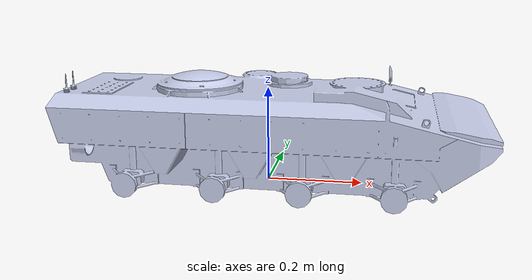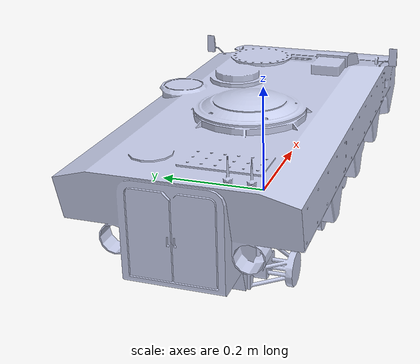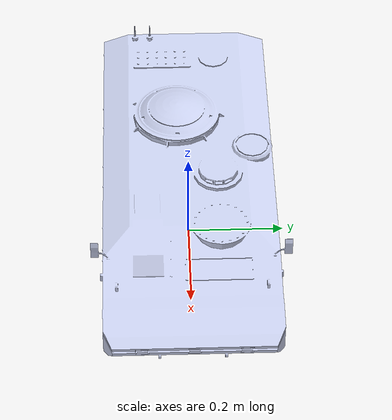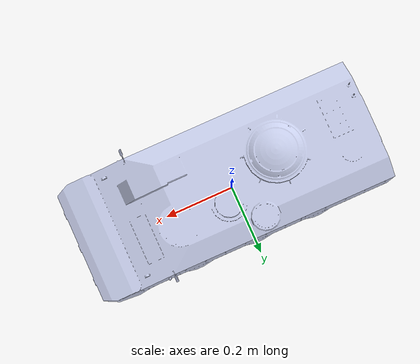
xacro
<?xml version="1.0" encoding="utf-8"?>
<robot xmlns:xacro="http://www.ros.org/wiki/xacro" name="dazuoye_base">

  <link name="base_link">
    <inertial>
      <origin xyz="-0.00175895322819281 -0.000186490435764575 0.115995062248732" rpy="0 0 0" />
      <mass value="40.5192970572116" />
      <inertia ixx="0.418864833638296" ixy="0.00162028052461188" ixz="0.0429721576576123" iyy="2.27038164283973" iyz="0.000430380682244321" izz="2.46685025651348" />
    </inertial>
    <visual>
      <origin xyz="0 0 0" rpy="0 0 0" />
      <geometry>
        <mesh filename="package://dazuoye/meshes/base_link.STL" />
      </geometry>
      <material name="">
        <color rgba="0.792156862745098 0.819607843137255 0.933333333333333 1" />
      </material>
    </visual>
    <collision>
      <origin xyz="0 0 0" rpy="0 0 0" />
      <geometry>
        <mesh filename="package://dazuoye/meshes/base_link.STL" />
      </geometry>
    </collision>
  </link>

</robot>
